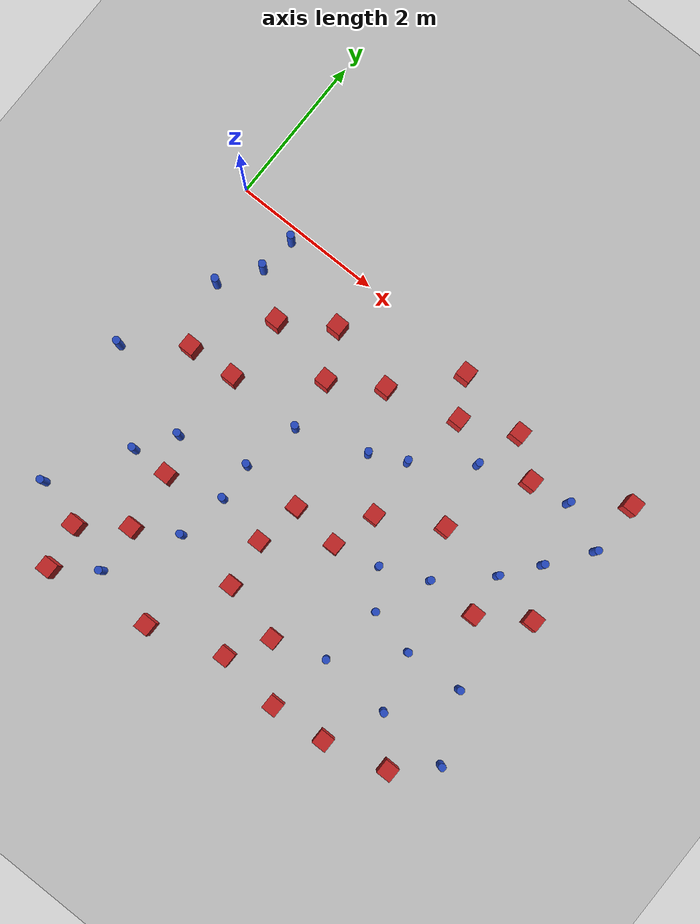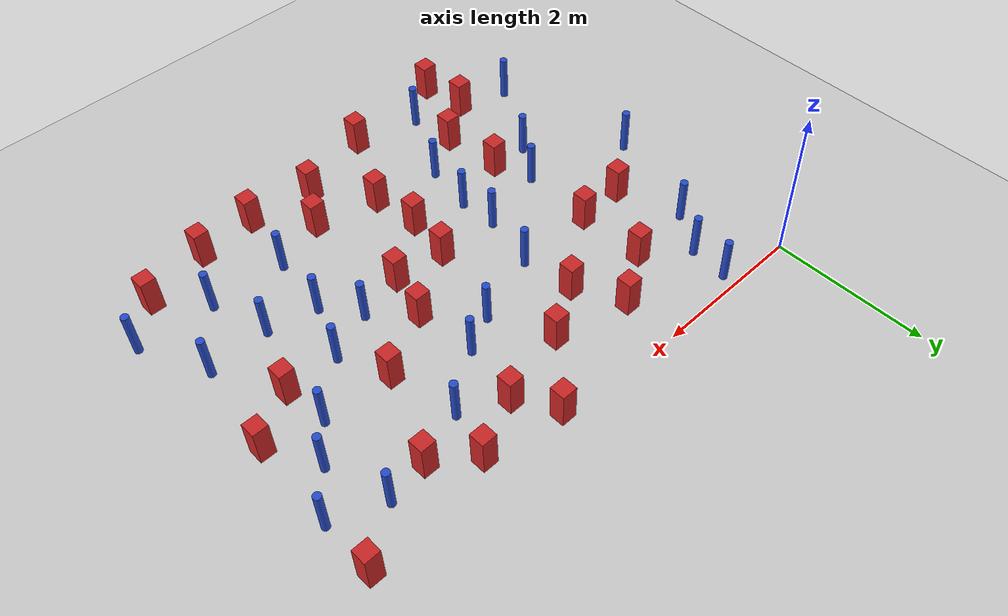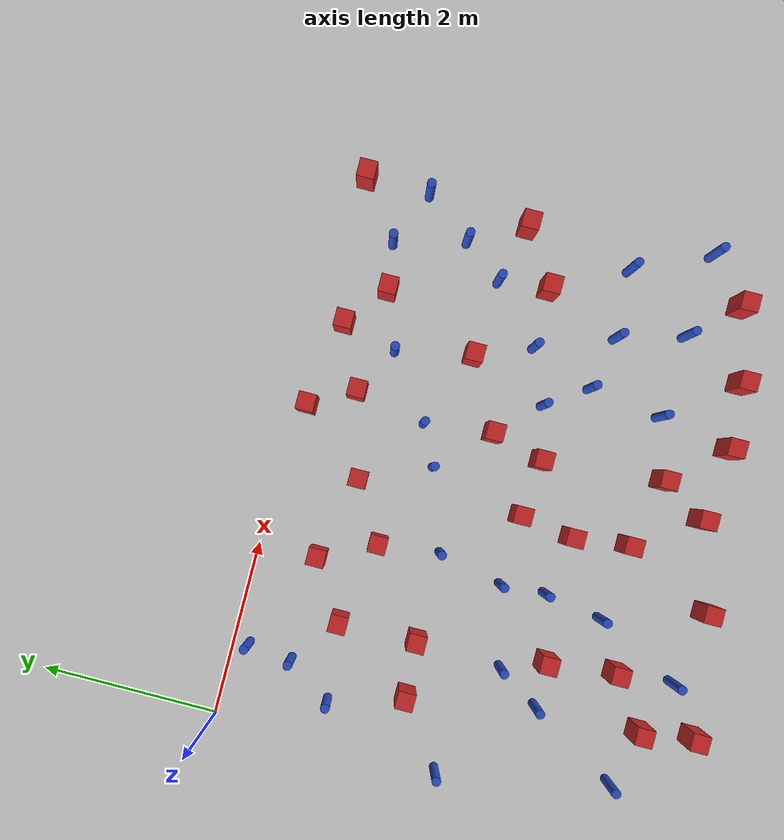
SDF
<sdf version="1.6">
 <world name="default">
  <model name="ground_plane">
   <static>1</static>
   <link name="link">
    <collision name="collision">
     <geometry><plane><normal>0 0 1</normal><size>100 100</size></plane></geometry>
     <surface><friction><ode><mu>100</mu><mu2>50</mu2></ode></friction></surface>
    </collision>
    <visual name="visual">
     <cast_shadows>0</cast_shadows>
     <geometry><plane><normal>0 0 1</normal><size>100 100</size></plane></geometry>
     <material>
      <ambient>1.0 1.0 1.0 1.0</ambient>
      <diffuse>0.8 0.8 0.8 1.0</diffuse>
      <specular>0.01 0.01 0.01 1.000000</specular>
     </material>
    </visual>
   </link>
  </model>
  <model name="square_post_obstacle3">
   <static>true</static>
   <pose>5.93491693929 -4.56497849383 -6.11067671241e-07 -5.50515727128e-06 -8.79689657224e-07 2.37013304536e-05</pose>
   <link name="link">
    <pose>0 0 0.25 0 -0 0</pose>
    <inertial>
     <mass>100</mass>
     <inertia>
      <ixx>0.166667</ixx>
      <ixy>0</ixy>
      <ixz>0</ixz>
      <iyy>0.166667</iyy>
      <iyz>0</iyz>
      <izz>0.166667</izz>
     </inertia>
    </inertial>
    <collision name="collision"><geometry><box><size>.2 .2 .5</size></box></geometry></collision>
    <visual name="visual">
     <geometry><box><size>.2 .2 .5</size></box></geometry>
     <material>
      <script><name>Gazebo/Red</name><uri>file://media/materials/scripts/gazebo.material</uri></script>
     </material>
    </visual>
   </link>
  </model>
  <model name="square_post_obstacle5">
   <static>true</static>
   <pose>1.39741543957 -1.98216224227 -6.11067671241e-07 -5.50515727128e-06 -8.79689657224e-07 2.37013304536e-05</pose>
   <link name="link">
    <pose>0 0 0.25 0 -0 0</pose>
    <inertial>
     <mass>100</mass>
     <inertia>
      <ixx>0.166667</ixx>
      <ixy>0</ixy>
      <ixz>0</ixz>
      <iyy>0.166667</iyy>
      <iyz>0</iyz>
      <izz>0.166667</izz>
     </inertia>
    </inertial>
    <collision name="collision"><geometry><box><size>.2 .2 .5</size></box></geometry></collision>
    <visual name="visual">
     <geometry><box><size>.2 .2 .5</size></box></geometry>
     <material>
      <script><name>Gazebo/Red</name><uri>file://media/materials/scripts/gazebo.material</uri></script>
     </material>
    </visual>
   </link>
  </model>
  <model name="pole_obstacle5">
   <static>true</static>
   <pose>2.40981222985 -1.99631648848 -9.47619616065e-06 5.49618799737e-07 2.36310414067e-07 -1.55090534796e-07</pose>
   <link name="link">
    <pose>0 0 0.3 0 -0 0</pose>
    <inertial>
     <mass>1</mass>
     <inertia><ixx>0.145833</ixx><ixy>0</ixy><ixz>0</ixz><iyy>0.145833</iyy><iyz>0</iyz><izz>0.125</izz></inertia>
    </inertial>
    <collision name="collision">
     <geometry><cylinder><radius>0.05</radius><length>.6</length></cylinder></geometry>
    </collision>
    <visual name="visual">
     <geometry><cylinder><radius>0.05</radius><length>.6</length></cylinder></geometry>
     <material>
      <script><name>Gazebo/Blue</name><uri>file://media/materials/scripts/gazebo.material</uri></script>
     </material>
    </visual>
   </link>
  </model>
  <model name="square_post_obstacle8">
   <static>true</static>
   <pose>3.69870335096 -2.82734177414 -6.11067671241e-07 -5.50515727128e-06 -8.79689657224e-07 2.37013304536e-05</pose>
   <link name="link">
    <pose>0 0 0.25 0 -0 0</pose>
    <inertial>
     <mass>100</mass>
     <inertia>
      <ixx>0.166667</ixx>
      <ixy>0</ixy>
      <ixz>0</ixz>
      <iyy>0.166667</iyy>
      <iyz>0</iyz>
      <izz>0.166667</izz>
     </inertia>
    </inertial>
    <collision name="collision"><geometry><box><size>.2 .2 .5</size></box></geometry></collision>
    <visual name="visual">
     <geometry><box><size>.2 .2 .5</size></box></geometry>
     <material>
      <script><name>Gazebo/Red</name><uri>file://media/materials/scripts/gazebo.material</uri></script>
     </material>
    </visual>
   </link>
  </model>
  <model name="pole_obstacle6">
   <static>true</static>
   <pose>0.389493919441 -4.4717487802 -9.47619616065e-06 5.49618799737e-07 2.36310414065e-07 -1.55090534796e-07</pose>
   <link name="link">
    <pose>0 0 0.3 0 -0 0</pose>
    <inertial>
     <mass>1</mass>
     <inertia><ixx>0.145833</ixx><ixy>0</ixy><ixz>0</ixz><iyy>0.145833</iyy><iyz>0</iyz><izz>0.125</izz></inertia>
    </inertial>
    <collision name="collision">
     <geometry><cylinder><radius>0.05</radius><length>.6</length></cylinder></geometry>
    </collision>
    <visual name="visual">
     <geometry><cylinder><radius>0.05</radius><length>.6</length></cylinder></geometry>
     <material>
      <script><name>Gazebo/Blue</name><uri>file://media/materials/scripts/gazebo.material</uri></script>
     </material>
    </visual>
   </link>
  </model>
  <model name="square_post_obstacle13">
   <static>true</static>
   <pose>1.38367656755 -1.09471865919 -6.11067671241e-07 -5.50515727128e-06 -8.79689657224e-07 2.37013304536e-05</pose>
   <link name="link">
    <pose>0 0 0.25 0 -0 0</pose>
    <inertial>
     <mass>100</mass>
     <inertia>
      <ixx>0.166667</ixx>
      <ixy>0</ixy>
      <ixz>0</ixz>
      <iyy>0.166667</iyy>
      <iyz>0</iyz>
      <izz>0.166667</izz>
     </inertia>
    </inertial>
    <collision name="collision"><geometry><box><size>.2 .2 .5</size></box></geometry></collision>
    <visual name="visual">
     <geometry><box><size>.2 .2 .5</size></box></geometry>
     <material>
      <script><name>Gazebo/Red</name><uri>file://media/materials/scripts/gazebo.material</uri></script>
     </material>
    </visual>
   </link>
  </model>
  <model name="pole_obstacle14">
   <static>true</static>
   <pose>4.50683126189 -3.98978135572 -9.47619616065e-06 5.49618799737e-07 2.36310414056e-07 -1.55090534802e-07</pose>
   <link name="link">
    <pose>0 0 0.3 0 -0 0</pose>
    <inertial>
     <mass>1</mass>
     <inertia><ixx>0.145833</ixx><ixy>0</ixy><ixz>0</ixz><iyy>0.145833</iyy><iyz>0</iyz><izz>0.125</izz></inertia>
    </inertial>
    <collision name="collision">
     <geometry><cylinder><radius>0.05</radius><length>.6</length></cylinder></geometry>
    </collision>
    <visual name="visual">
     <geometry><cylinder><radius>0.05</radius><length>.6</length></cylinder></geometry>
     <material>
      <script><name>Gazebo/Blue</name><uri>file://media/materials/scripts/gazebo.material</uri></script>
     </material>
    </visual>
   </link>
  </model>
  <model name="pole_obstacle17">
   <static>true</static>
   <pose>1.65598059644 -4.87979008221 -9.47619616065e-06 5.49618799737e-07 2.36310414061e-07 -1.550905348e-07</pose>
   <link name="link">
    <pose>0 0 0.3 0 -0 0</pose>
    <inertial>
     <mass>1</mass>
     <inertia><ixx>0.145833</ixx><ixy>0</ixy><ixz>0</ixz><iyy>0.145833</iyy><iyz>0</iyz><izz>0.125</izz></inertia>
    </inertial>
    <collision name="collision">
     <geometry><cylinder><radius>0.05</radius><length>.6</length></cylinder></geometry>
    </collision>
    <visual name="visual">
     <geometry><cylinder><radius>0.05</radius><length>.6</length></cylinder></geometry>
     <material>
      <script><name>Gazebo/Blue</name><uri>file://media/materials/scripts/gazebo.material</uri></script>
     </material>
    </visual>
   </link>
  </model>
  <model name="pole_obstacle18">
   <static>true</static>
   <pose>0.83141862547 -0.680883970394 -9.47619616065e-06 5.49618799737e-07 2.36310414058e-07 -1.55090534802e-07</pose>
   <link name="link">
    <pose>0 0 0.3 0 -0 0</pose>
    <inertial>
     <mass>1</mass>
     <inertia><ixx>0.145833</ixx><ixy>0</ixy><ixz>0</ixz><iyy>0.145833</iyy><iyz>0</iyz><izz>0.125</izz></inertia>
    </inertial>
    <collision name="collision">
     <geometry><cylinder><radius>0.05</radius><length>.6</length></cylinder></geometry>
    </collision>
    <visual name="visual">
     <geometry><cylinder><radius>0.05</radius><length>.6</length></cylinder></geometry>
     <material>
      <script><name>Gazebo/Blue</name><uri>file://media/materials/scripts/gazebo.material</uri></script>
     </material>
    </visual>
   </link>
  </model>
  <model name="square_post_obstacle30">
   <static>true</static>
   <pose>2.03150371565 -0.678253084458 -6.11067671241e-07 -5.50515727128e-06 -8.79689657224e-07 2.37013304536e-05</pose>
   <link name="link">
    <pose>0 0 0.25 0 -0 0</pose>
    <inertial>
     <mass>100</mass>
     <inertia>
      <ixx>0.166667</ixx>
      <ixy>0</ixy>
      <ixz>0</ixz>
      <iyy>0.166667</iyy>
      <iyz>0</iyz>
      <izz>0.166667</izz>
     </inertia>
    </inertial>
    <collision name="collision"><geometry><box><size>.2 .2 .5</size></box></geometry></collision>
    <visual name="visual">
     <geometry><box><size>.2 .2 .5</size></box></geometry>
     <material>
      <script><name>Gazebo/Red</name><uri>file://media/materials/scripts/gazebo.material</uri></script>
     </material>
    </visual>
   </link>
  </model>
  <model name="pole_obstacle22">
   <static>true</static>
   <pose>4.29974437576 -2.69305750148 -9.47619616065e-06 5.49618799738e-07 2.36310414051e-07 -1.55090534805e-07</pose>
   <link name="link">
    <pose>0 0 0.3 0 -0 0</pose>
    <inertial>
     <mass>1</mass>
     <inertia><ixx>0.145833</ixx><ixy>0</ixy><ixz>0</ixz><iyy>0.145833</iyy><iyz>0</iyz><izz>0.125</izz></inertia>
    </inertial>
    <collision name="collision">
     <geometry><cylinder><radius>0.05</radius><length>.6</length></cylinder></geometry>
    </collision>
    <visual name="visual">
     <geometry><cylinder><radius>0.05</radius><length>.6</length></cylinder></geometry>
     <material>
      <script><name>Gazebo/Blue</name><uri>file://media/materials/scripts/gazebo.material</uri></script>
     </material>
    </visual>
   </link>
  </model>
  <model name="pole_obstacle23">
   <static>true</static>
   <pose>0.0288925146814 -2.554800036 -9.47619616065e-06 5.49618799737e-07 2.36310414066e-07 -1.55090534795e-07</pose>
   <link name="link">
    <pose>0 0 0.3 0 -0 0</pose>
    <inertial>
     <mass>1</mass>
     <inertia><ixx>0.145833</ixx><ixy>0</ixy><ixz>0</ixz><iyy>0.145833</iyy><iyz>0</iyz><izz>0.125</izz></inertia>
    </inertial>
    <collision name="collision">
     <geometry><cylinder><radius>0.05</radius><length>.6</length></cylinder></geometry>
    </collision>
    <visual name="visual">
     <geometry><cylinder><radius>0.05</radius><length>.6</length></cylinder></geometry>
     <material>
      <script><name>Gazebo/Blue</name><uri>file://media/materials/scripts/gazebo.material</uri></script>
     </material>
    </visual>
   </link>
  </model>
  <model name="square_post_obstacle32">
   <static>true</static>
   <pose>4.63841736572 -0.311042959132 -6.11067671241e-07 -5.50515727128e-06 -8.79689657224e-07 2.37013304536e-05</pose>
   <link name="link">
    <pose>0 0 0.25 0 -0 0</pose>
    <inertial>
     <mass>100</mass>
     <inertia>
      <ixx>0.166667</ixx>
      <ixy>0</ixy>
      <ixz>0</ixz>
      <iyy>0.166667</iyy>
      <iyz>0</iyz>
      <izz>0.166667</izz>
     </inertia>
    </inertial>
    <collision name="collision"><geometry><box><size>.2 .2 .5</size></box></geometry></collision>
    <visual name="visual">
     <geometry><box><size>.2 .2 .5</size></box></geometry>
     <material>
      <script><name>Gazebo/Red</name><uri>file://media/materials/scripts/gazebo.material</uri></script>
     </material>
    </visual>
   </link>
  </model>
  <model name="pole_obstacle37">
   <static>true</static>
   <pose>6.01693368103 -3.25612209265 -9.47619616065e-06 5.49618799738e-07 2.36310414051e-07 -1.55090534805e-07</pose>
   <link name="link">
    <pose>0 0 0.3 0 -0 0</pose>
    <inertial>
     <mass>1</mass>
     <inertia><ixx>0.145833</ixx><ixy>0</ixy><ixz>0</ixz><iyy>0.145833</iyy><iyz>0</iyz><izz>0.125</izz></inertia>
    </inertial>
    <collision name="collision">
     <geometry><cylinder><radius>0.05</radius><length>.6</length></cylinder></geometry>
    </collision>
    <visual name="visual">
     <geometry><cylinder><radius>0.05</radius><length>.6</length></cylinder></geometry>
     <material>
      <script><name>Gazebo/Blue</name><uri>file://media/materials/scripts/gazebo.material</uri></script>
     </material>
    </visual>
   </link>
  </model>
  <model name="pole_obstacle43">
   <static>true</static>
   <pose>2.26759125185 -3.2463723414 -9.47619616065e-06 5.49618799737e-07 2.36310414051e-07 -1.55090534807e-07</pose>
   <link name="link">
    <pose>0 0 0.3 0 -0 0</pose>
    <inertial>
     <mass>1</mass>
     <inertia><ixx>0.145833</ixx><ixy>0</ixy><ixz>0</ixz><iyy>0.145833</iyy><iyz>0</iyz><izz>0.125</izz></inertia>
    </inertial>
    <collision name="collision">
     <geometry><cylinder><radius>0.05</radius><length>.6</length></cylinder></geometry>
    </collision>
    <visual name="visual">
     <geometry><cylinder><radius>0.05</radius><length>.6</length></cylinder></geometry>
     <material>
      <script><name>Gazebo/Blue</name><uri>file://media/materials/scripts/gazebo.material</uri></script>
     </material>
    </visual>
   </link>
  </model>
  <model name="square_post_obstacle40">
   <static>true</static>
   <pose>3.50865092904 -4.73596114706 -6.11067671241e-07 -5.50515727128e-06 -8.79689657224e-07 2.37013304536e-05</pose>
   <link name="link">
    <pose>0 0 0.25 0 -0 0</pose>
    <inertial>
     <mass>100</mass>
     <inertia>
      <ixx>0.166667</ixx>
      <ixy>0</ixy>
      <ixz>0</ixz>
      <iyy>0.166667</iyy>
      <iyz>0</iyz>
      <izz>0.166667</izz>
     </inertia>
    </inertial>
    <collision name="collision"><geometry><box><size>.2 .2 .5</size></box></geometry></collision>
    <visual name="visual">
     <geometry><box><size>.2 .2 .5</size></box></geometry>
     <material>
      <script><name>Gazebo/Red</name><uri>file://media/materials/scripts/gazebo.material</uri></script>
     </material>
    </visual>
   </link>
  </model>
  <model name="pole_obstacle49">
   <static>true</static>
   <pose>5.64526647677 -0.608602017892 -9.47619616065e-06 5.49618799737e-07 2.36310414061e-07 -1.550905348e-07</pose>
   <link name="link">
    <pose>0 0 0.3 0 -0 0</pose>
    <inertial>
     <mass>1</mass>
     <inertia><ixx>0.145833</ixx><ixy>0</ixy><ixz>0</ixz><iyy>0.145833</iyy><iyz>0</iyz><izz>0.125</izz></inertia>
    </inertial>
    <collision name="collision">
     <geometry><cylinder><radius>0.05</radius><length>.6</length></cylinder></geometry>
    </collision>
    <visual name="visual">
     <geometry><cylinder><radius>0.05</radius><length>.6</length></cylinder></geometry>
     <material>
      <script><name>Gazebo/Blue</name><uri>file://media/materials/scripts/gazebo.material</uri></script>
     </material>
    </visual>
   </link>
  </model>
  <model name="square_post_obstacle50">
   <static>true</static>
   <pose>1.03570047917 -4.65241088462 -6.11067671241e-07 -5.50515727128e-06 -8.79689657224e-07 2.37013304536e-05</pose>
   <link name="link">
    <pose>0 0 0.25 0 -0 0</pose>
    <inertial>
     <mass>100</mass>
     <inertia>
      <ixx>0.166667</ixx>
      <ixy>0</ixy>
      <ixz>0</ixz>
      <iyy>0.166667</iyy>
      <iyz>0</iyz>
      <izz>0.166667</izz>
     </inertia>
    </inertial>
    <collision name="collision"><geometry><box><size>.2 .2 .5</size></box></geometry></collision>
    <visual name="visual">
     <geometry><box><size>.2 .2 .5</size></box></geometry>
     <material>
      <script><name>Gazebo/Red</name><uri>file://media/materials/scripts/gazebo.material</uri></script>
     </material>
    </visual>
   </link>
  </model>
  <model name="square_post_obstacle55">
   <static>true</static>
   <pose>2.95252457975 -3.37588855987 -6.11067671241e-07 -5.50515727128e-06 -8.79689657224e-07 2.37013304536e-05</pose>
   <link name="link">
    <pose>0 0 0.25 0 -0 0</pose>
    <inertial>
     <mass>100</mass>
     <inertia>
      <ixx>0.166667</ixx>
      <ixy>0</ixy>
      <ixz>0</ixz>
      <iyy>0.166667</iyy>
      <iyz>0</iyz>
      <izz>0.166667</izz>
     </inertia>
    </inertial>
    <collision name="collision"><geometry><box><size>.2 .2 .5</size></box></geometry></collision>
    <visual name="visual">
     <geometry><box><size>.2 .2 .5</size></box></geometry>
     <material>
      <script><name>Gazebo/Red</name><uri>file://media/materials/scripts/gazebo.material</uri></script>
     </material>
    </visual>
   </link>
  </model>
  <model name="square_post_obstacle58">
   <static>true</static>
   <pose>6.28109671533 -0.143206653476 -6.11067671241e-07 -5.50515727128e-06 -8.79689657224e-07 2.37013304536e-05</pose>
   <link name="link">
    <pose>0 0 0.25 0 -0 0</pose>
    <inertial>
     <mass>100</mass>
     <inertia>
      <ixx>0.166667</ixx>
      <ixy>0</ixy>
      <ixz>0</ixz>
      <iyy>0.166667</iyy>
      <iyz>0</iyz>
      <izz>0.166667</izz>
     </inertia>
    </inertial>
    <collision name="collision"><geometry><box><size>.2 .2 .5</size></box></geometry></collision>
    <visual name="visual">
     <geometry><box><size>.2 .2 .5</size></box></geometry>
     <material>
      <script><name>Gazebo/Red</name><uri>file://media/materials/scripts/gazebo.material</uri></script>
     </material>
    </visual>
   </link>
  </model>
  <model name="square_post_obstacle61">
   <static>true</static>
   <pose>1.52835404026 -3.45151735247 -6.11067671241e-07 -5.50515727128e-06 -8.79689657224e-07 2.37013304536e-05</pose>
   <link name="link">
    <pose>0 0 0.25 0 -0 0</pose>
    <inertial>
     <mass>100</mass>
     <inertia>
      <ixx>0.166667</ixx>
      <ixy>0</ixy>
      <ixz>0</ixz>
      <iyy>0.166667</iyy>
      <iyz>0</iyz>
      <izz>0.166667</izz>
     </inertia>
    </inertial>
    <collision name="collision"><geometry><box><size>.2 .2 .5</size></box></geometry></collision>
    <visual name="visual">
     <geometry><box><size>.2 .2 .5</size></box></geometry>
     <material>
      <script><name>Gazebo/Red</name><uri>file://media/materials/scripts/gazebo.material</uri></script>
     </material>
    </visual>
   </link>
  </model>
  <model name="square_post_obstacle68">
   <static>true</static>
   <pose>2.33672119821 -1.29504776456 -6.11067671241e-07 -5.50515727128e-06 -8.79689657224e-07 2.37013304536e-05</pose>
   <link name="link">
    <pose>0 0 0.25 0 -0 0</pose>
    <inertial>
     <mass>100</mass>
     <inertia>
      <ixx>0.166667</ixx>
      <ixy>0</ixy>
      <ixz>0</ixz>
      <iyy>0.166667</iyy>
      <iyz>0</iyz>
      <izz>0.166667</izz>
     </inertia>
    </inertial>
    <collision name="collision"><geometry><box><size>.2 .2 .5</size></box></geometry></collision>
    <visual name="visual">
     <geometry><box><size>.2 .2 .5</size></box></geometry>
     <material>
      <script><name>Gazebo/Red</name><uri>file://media/materials/scripts/gazebo.material</uri></script>
     </material>
    </visual>
   </link>
  </model>
  <model name="square_post_obstacle74">
   <static>true</static>
   <pose>3.86127628082 -2.23218335278 -6.11067671241e-07 -5.50515727128e-06 -8.79689657224e-07 2.37013304536e-05</pose>
   <link name="link">
    <pose>0 0 0.25 0 -0 0</pose>
    <inertial>
     <mass>100</mass>
     <inertia>
      <ixx>0.166667</ixx>
      <ixy>0</ixy>
      <ixz>0</ixz>
      <iyy>0.166667</iyy>
      <iyz>0</iyz>
      <izz>0.166667</izz>
     </inertia>
    </inertial>
    <collision name="collision"><geometry><box><size>.2 .2 .5</size></box></geometry></collision>
    <visual name="visual">
     <geometry><box><size>.2 .2 .5</size></box></geometry>
     <material>
      <script><name>Gazebo/Red</name><uri>file://media/materials/scripts/gazebo.material</uri></script>
     </material>
    </visual>
   </link>
  </model>
  <model name="square_post_obstacle75">
   <static>true</static>
   <pose>3.02507740578 -4.01663910359 -6.11067671241e-07 -5.50515727128e-06 -8.79689657224e-07 2.37013304536e-05</pose>
   <link name="link">
    <pose>0 0 0.25 0 -0 0</pose>
    <inertial>
     <mass>100</mass>
     <inertia>
      <ixx>0.166667</ixx>
      <ixy>0</ixy>
      <ixz>0</ixz>
      <iyy>0.166667</iyy>
      <iyz>0</iyz>
      <izz>0.166667</izz>
     </inertia>
    </inertial>
    <collision name="collision"><geometry><box><size>.2 .2 .5</size></box></geometry></collision>
    <visual name="visual">
     <geometry><box><size>.2 .2 .5</size></box></geometry>
     <material>
      <script><name>Gazebo/Red</name><uri>file://media/materials/scripts/gazebo.material</uri></script>
     </material>
    </visual>
   </link>
  </model>
  <model name="pole_obstacle95">
   <static>true</static>
   <pose>1.33597169667 -2.97445685794 -9.47619616065e-06 5.49618799737e-07 2.36310414062e-07 -1.55090534798e-07</pose>
   <link name="link">
    <pose>0 0 0.3 0 -0 0</pose>
    <inertial>
     <mass>1</mass>
     <inertia><ixx>0.145833</ixx><ixy>0</ixy><ixz>0</ixz><iyy>0.145833</iyy><iyz>0</iyz><izz>0.125</izz></inertia>
    </inertial>
    <collision name="collision">
     <geometry><cylinder><radius>0.05</radius><length>.6</length></cylinder></geometry>
    </collision>
    <visual name="visual">
     <geometry><cylinder><radius>0.05</radius><length>.6</length></cylinder></geometry>
     <material>
      <script><name>Gazebo/Blue</name><uri>file://media/materials/scripts/gazebo.material</uri></script>
     </material>
    </visual>
   </link>
  </model>
  <model name="pole_obstacle109">
   <static>true</static>
   <pose>0.880218900646 -0.179494604576 -9.47619616065e-06 5.49618799737e-07 2.36310414066e-07 -1.55090534796e-07</pose>
   <link name="link">
    <pose>0 0 0.3 0 -0 0</pose>
    <inertial>
     <mass>1</mass>
     <inertia><ixx>0.145833</ixx><ixy>0</ixy><ixz>0</ixz><iyy>0.145833</iyy><iyz>0</iyz><izz>0.125</izz></inertia>
    </inertial>
    <collision name="collision">
     <geometry><cylinder><radius>0.05</radius><length>.6</length></cylinder></geometry>
    </collision>
    <visual name="visual">
     <geometry><cylinder><radius>0.05</radius><length>.6</length></cylinder></geometry>
     <material>
      <script><name>Gazebo/Blue</name><uri>file://media/materials/scripts/gazebo.material</uri></script>
     </material>
    </visual>
   </link>
  </model>
  <model name="pole_obstacle115">
   <static>true</static>
   <pose>1.01440386735 -3.45922749692 -9.47619616065e-06 5.49618799737e-07 2.36310414062e-07 -1.55090534798e-07</pose>
   <link name="link">
    <pose>0 0 0.3 0 -0 0</pose>
    <inertial>
     <mass>1</mass>
     <inertia><ixx>0.145833</ixx><ixy>0</ixy><ixz>0</ixz><iyy>0.145833</iyy><iyz>0</iyz><izz>0.125</izz></inertia>
    </inertial>
    <collision name="collision">
     <geometry><cylinder><radius>0.05</radius><length>.6</length></cylinder></geometry>
    </collision>
    <visual name="visual">
     <geometry><cylinder><radius>0.05</radius><length>.6</length></cylinder></geometry>
     <material>
      <script><name>Gazebo/Blue</name><uri>file://media/materials/scripts/gazebo.material</uri></script>
     </material>
    </visual>
   </link>
  </model>
  <model name="square_post_obstacle111">
   <static>true</static>
   <pose>5.09523261792 -4.77558941481 -6.11067671241e-07 -5.50515727128e-06 -8.79689657224e-07 2.37013304536e-05</pose>
   <link name="link">
    <pose>0 0 0.25 0 -0 0</pose>
    <inertial>
     <mass>100</mass>
     <inertia>
      <ixx>0.166667</ixx>
      <ixy>0</ixy>
      <ixz>0</ixz>
      <iyy>0.166667</iyy>
      <iyz>0</iyz>
      <izz>0.166667</izz>
     </inertia>
    </inertial>
    <collision name="collision"><geometry><box><size>.2 .2 .5</size></box></geometry></collision>
    <visual name="visual">
     <geometry><box><size>.2 .2 .5</size></box></geometry>
     <material>
      <script><name>Gazebo/Red</name><uri>file://media/materials/scripts/gazebo.material</uri></script>
     </material>
    </visual>
   </link>
  </model>
  <model name="pole_obstacle121">
   <static>true</static>
   <pose>3.32131577457 -1.6781335726 -9.47619616065e-06 5.49618799737e-07 2.36310414072e-07 -1.55090534793e-07</pose>
   <link name="link">
    <pose>0 0 0.3 0 -0 0</pose>
    <inertial>
     <mass>1</mass>
     <inertia><ixx>0.145833</ixx><ixy>0</ixy><ixz>0</ixz><iyy>0.145833</iyy><iyz>0</iyz><izz>0.125</izz></inertia>
    </inertial>
    <collision name="collision">
     <geometry><cylinder><radius>0.05</radius><length>.6</length></cylinder></geometry>
    </collision>
    <visual name="visual">
     <geometry><cylinder><radius>0.05</radius><length>.6</length></cylinder></geometry>
     <material>
      <script><name>Gazebo/Blue</name><uri>file://media/materials/scripts/gazebo.material</uri></script>
     </material>
    </visual>
   </link>
  </model>
  <model name="pole_obstacle123">
   <static>true</static>
   <pose>6.27652964443 -0.870424732003 -9.47619616065e-06 5.49618799737e-07 2.36310414061e-07 -1.550905348e-07</pose>
   <link name="link">
    <pose>0 0 0.3 0 -0 0</pose>
    <inertial>
     <mass>1</mass>
     <inertia><ixx>0.145833</ixx><ixy>0</ixy><ixz>0</ixz><iyy>0.145833</iyy><iyz>0</iyz><izz>0.125</izz></inertia>
    </inertial>
    <collision name="collision">
     <geometry><cylinder><radius>0.05</radius><length>.6</length></cylinder></geometry>
    </collision>
    <visual name="visual">
     <geometry><cylinder><radius>0.05</radius><length>.6</length></cylinder></geometry>
     <material>
      <script><name>Gazebo/Blue</name><uri>file://media/materials/scripts/gazebo.material</uri></script>
     </material>
    </visual>
   </link>
  </model>
  <model name="pole_obstacle124">
   <static>true</static>
   <pose>5.87001196188 -1.41035433271 -9.47619616065e-06 5.49618799738e-07 2.36310414071e-07 -1.55090534796e-07</pose>
   <link name="link">
    <pose>0 0 0.3 0 -0 0</pose>
    <inertial>
     <mass>1</mass>
     <inertia><ixx>0.145833</ixx><ixy>0</ixy><ixz>0</ixz><iyy>0.145833</iyy><iyz>0</iyz><izz>0.125</izz></inertia>
    </inertial>
    <collision name="collision">
     <geometry><cylinder><radius>0.05</radius><length>.6</length></cylinder></geometry>
    </collision>
    <visual name="visual">
     <geometry><cylinder><radius>0.05</radius><length>.6</length></cylinder></geometry>
     <material>
      <script><name>Gazebo/Blue</name><uri>file://media/materials/scripts/gazebo.material</uri></script>
     </material>
    </visual>
   </link>
  </model>
  <model name="pole_obstacle131">
   <static>true</static>
   <pose>0.485863876652 -1.18968577591 -9.47619616065e-06 5.49618799737e-07 2.36310414059e-07 -1.55090534802e-07</pose>
   <link name="link">
    <pose>0 0 0.3 0 -0 0</pose>
    <inertial>
     <mass>1</mass>
     <inertia><ixx>0.145833</ixx><ixy>0</ixy><ixz>0</ixz><iyy>0.145833</iyy><iyz>0</iyz><izz>0.125</izz></inertia>
    </inertial>
    <collision name="collision">
     <geometry><cylinder><radius>0.05</radius><length>.6</length></cylinder></geometry>
    </collision>
    <visual name="visual">
     <geometry><cylinder><radius>0.05</radius><length>.6</length></cylinder></geometry>
     <material>
      <script><name>Gazebo/Blue</name><uri>file://media/materials/scripts/gazebo.material</uri></script>
     </material>
    </visual>
   </link>
  </model>
  <model name="square_post_obstacle118">
   <static>true</static>
   <pose>4.64479843448 -1.79814276675 -6.11067671241e-07 -5.50515727128e-06 -8.79689657224e-07 2.37013304536e-05</pose>
   <link name="link">
    <pose>0 0 0.25 0 -0 0</pose>
    <inertial>
     <mass>100</mass>
     <inertia>
      <ixx>0.166667</ixx>
      <ixy>0</ixy>
      <ixz>0</ixz>
      <iyy>0.166667</iyy>
      <iyz>0</iyz>
      <izz>0.166667</izz>
     </inertia>
    </inertial>
    <collision name="collision"><geometry><box><size>.2 .2 .5</size></box></geometry></collision>
    <visual name="visual">
     <geometry><box><size>.2 .2 .5</size></box></geometry>
     <material>
      <script><name>Gazebo/Red</name><uri>file://media/materials/scripts/gazebo.material</uri></script>
     </material>
    </visual>
   </link>
  </model>
  <model name="square_post_obstacle123">
   <static>true</static>
   <pose>5.58381547905 -2.42893918374 -6.11067671241e-07 -5.50515727128e-06 -8.79689657224e-07 2.37013304536e-05</pose>
   <link name="link">
    <pose>0 0 0.25 0 -0 0</pose>
    <inertial>
     <mass>100</mass>
     <inertia>
      <ixx>0.166667</ixx>
      <ixy>0</ixy>
      <ixz>0</ixz>
      <iyy>0.166667</iyy>
      <iyz>0</iyz>
      <izz>0.166667</izz>
     </inertia>
    </inertial>
    <collision name="collision"><geometry><box><size>.2 .2 .5</size></box></geometry></collision>
    <visual name="visual">
     <geometry><box><size>.2 .2 .5</size></box></geometry>
     <material>
      <script><name>Gazebo/Red</name><uri>file://media/materials/scripts/gazebo.material</uri></script>
     </material>
    </visual>
   </link>
  </model>
  <model name="square_post_obstacle127">
   <static>true</static>
   <pose>3.93780053145 -0.643715294398 -6.11067671241e-07 -5.50515727128e-06 -8.79689657224e-07 2.37013304536e-05</pose>
   <link name="link">
    <pose>0 0 0.25 0 -0 0</pose>
    <inertial>
     <mass>100</mass>
     <inertia>
      <ixx>0.166667</ixx>
      <ixy>0</ixy>
      <ixz>0</ixz>
      <iyy>0.166667</iyy>
      <iyz>0</iyz>
      <izz>0.166667</izz>
     </inertia>
    </inertial>
    <collision name="collision"><geometry><box><size>.2 .2 .5</size></box></geometry></collision>
    <visual name="visual">
     <geometry><box><size>.2 .2 .5</size></box></geometry>
     <material>
      <script><name>Gazebo/Red</name><uri>file://media/materials/scripts/gazebo.material</uri></script>
     </material>
    </visual>
   </link>
  </model>
  <model name="square_post_obstacle137">
   <static>true</static>
   <pose>2.51319865448 -5.04619399887 -6.11067671241e-07 -5.50515727128e-06 -8.79689657224e-07 2.37013304536e-05</pose>
   <link name="link">
    <pose>0 0 0.25 0 -0 0</pose>
    <inertial>
     <mass>100</mass>
     <inertia>
      <ixx>0.166667</ixx>
      <ixy>0</ixy>
      <ixz>0</ixz>
      <iyy>0.166667</iyy>
      <iyz>0</iyz>
      <izz>0.166667</izz>
     </inertia>
    </inertial>
    <collision name="collision"><geometry><box><size>.2 .2 .5</size></box></geometry></collision>
    <visual name="visual">
     <geometry><box><size>.2 .2 .5</size></box></geometry>
     <material>
      <script><name>Gazebo/Red</name><uri>file://media/materials/scripts/gazebo.material</uri></script>
     </material>
    </visual>
   </link>
  </model>
  <model name="square_post_obstacle143">
   <static>true</static>
   <pose>2.98264623956 -0.903230557565 -6.11067671241e-07 -5.50515727128e-06 -8.79689657224e-07 2.37013304536e-05</pose>
   <link name="link">
    <pose>0 0 0.25 0 -0 0</pose>
    <inertial>
     <mass>100</mass>
     <inertia>
      <ixx>0.166667</ixx>
      <ixy>0</ixy>
      <ixz>0</ixz>
      <iyy>0.166667</iyy>
      <iyz>0</iyz>
      <izz>0.166667</izz>
     </inertia>
    </inertial>
    <collision name="collision"><geometry><box><size>.2 .2 .5</size></box></geometry></collision>
    <visual name="visual">
     <geometry><box><size>.2 .2 .5</size></box></geometry>
     <material>
      <script><name>Gazebo/Red</name><uri>file://media/materials/scripts/gazebo.material</uri></script>
     </material>
    </visual>
   </link>
  </model>
  <model name="square_post_obstacle149">
   <static>true</static>
   <pose>5.12017501942 -0.688888027112 -6.11067671241e-07 -5.50515727128e-06 -8.79689657224e-07 2.37013304536e-05</pose>
   <link name="link">
    <pose>0 0 0.25 0 -0 0</pose>
    <inertial>
     <mass>100</mass>
     <inertia>
      <ixx>0.166667</ixx>
      <ixy>0</ixy>
      <ixz>0</ixz>
      <iyy>0.166667</iyy>
      <iyz>0</iyz>
      <izz>0.166667</izz>
     </inertia>
    </inertial>
    <collision name="collision"><geometry><box><size>.2 .2 .5</size></box></geometry></collision>
    <visual name="visual">
     <geometry><box><size>.2 .2 .5</size></box></geometry>
     <material>
      <script><name>Gazebo/Red</name><uri>file://media/materials/scripts/gazebo.material</uri></script>
     </material>
    </visual>
   </link>
  </model>
  <model name="square_post_obstacle152">
   <static>true</static>
   <pose>4.35194241254 -4.83184355724 -6.11067671241e-07 -5.50515727128e-06 -8.79689657224e-07 2.37013304536e-05</pose>
   <link name="link">
    <pose>0 0 0.25 0 -0 0</pose>
    <inertial>
     <mass>100</mass>
     <inertia>
      <ixx>0.166667</ixx>
      <ixy>0</ixy>
      <ixz>0</ixz>
      <iyy>0.166667</iyy>
      <iyz>0</iyz>
      <izz>0.166667</izz>
     </inertia>
    </inertial>
    <collision name="collision"><geometry><box><size>.2 .2 .5</size></box></geometry></collision>
    <visual name="visual">
     <geometry><box><size>.2 .2 .5</size></box></geometry>
     <material>
      <script><name>Gazebo/Red</name><uri>file://media/materials/scripts/gazebo.material</uri></script>
     </material>
    </visual>
   </link>
  </model>
  <model name="pole_obstacle161">
   <static>true</static>
   <pose>4.90421057921 -2.4343012238 -9.47619616065e-06 5.49618799738e-07 2.36310414051e-07 -1.55090534805e-07</pose>
   <link name="link">
    <pose>0 0 0.3 0 -0 0</pose>
    <inertial>
     <mass>1</mass>
     <inertia><ixx>0.145833</ixx><ixy>0</ixy><ixz>0</ixz><iyy>0.145833</iyy><iyz>0</iyz><izz>0.125</izz></inertia>
    </inertial>
    <collision name="collision">
     <geometry><cylinder><radius>0.05</radius><length>.6</length></cylinder></geometry>
    </collision>
    <visual name="visual">
     <geometry><cylinder><radius>0.05</radius><length>.6</length></cylinder></geometry>
     <material>
      <script><name>Gazebo/Blue</name><uri>file://media/materials/scripts/gazebo.material</uri></script>
     </material>
    </visual>
   </link>
  </model>
  <model name="pole_obstacle163">
   <static>true</static>
   <pose>3.76962584621 -1.45416243762 -9.47619616065e-06 5.49618799737e-07 2.36310414072e-07 -1.55090534793e-07</pose>
   <link name="link">
    <pose>0 0 0.3 0 -0 0</pose>
    <inertial>
     <mass>1</mass>
     <inertia><ixx>0.145833</ixx><ixy>0</ixy><ixz>0</ixz><iyy>0.145833</iyy><iyz>0</iyz><izz>0.125</izz></inertia>
    </inertial>
    <collision name="collision">
     <geometry><cylinder><radius>0.05</radius><length>.6</length></cylinder></geometry>
    </collision>
    <visual name="visual">
     <geometry><cylinder><radius>0.05</radius><length>.6</length></cylinder></geometry>
     <material>
      <script><name>Gazebo/Blue</name><uri>file://media/materials/scripts/gazebo.material</uri></script>
     </material>
    </visual>
   </link>
  </model>
  <model name="pole_obstacle175">
   <static>true</static>
   <pose>2.14903567977 -3.9168476584 -9.47619616065e-06 5.49618799737e-07 2.36310414051e-07 -1.55090534807e-07</pose>
   <link name="link">
    <pose>0 0 0.3 0 -0 0</pose>
    <inertial>
     <mass>1</mass>
     <inertia><ixx>0.145833</ixx><ixy>0</ixy><ixz>0</ixz><iyy>0.145833</iyy><iyz>0</iyz><izz>0.125</izz></inertia>
    </inertial>
    <collision name="collision">
     <geometry><cylinder><radius>0.05</radius><length>.6</length></cylinder></geometry>
    </collision>
    <visual name="visual">
     <geometry><cylinder><radius>0.05</radius><length>.6</length></cylinder></geometry>
     <material>
      <script><name>Gazebo/Blue</name><uri>file://media/materials/scripts/gazebo.material</uri></script>
     </material>
    </visual>
   </link>
  </model>
  <model name="square_post_obstacle167">
   <static>true</static>
   <pose>6.20034055776 -2.02792711833 -6.11067671241e-07 -5.50515727128e-06 -8.79689657224e-07 2.37013304536e-05</pose>
   <link name="link">
    <pose>0 0 0.25 0 -0 0</pose>
    <inertial>
     <mass>100</mass>
     <inertia>
      <ixx>0.166667</ixx>
      <ixy>0</ixy>
      <ixz>0</ixz>
      <iyy>0.166667</iyy>
      <iyz>0</iyz>
      <izz>0.166667</izz>
     </inertia>
    </inertial>
    <collision name="collision"><geometry><box><size>.2 .2 .5</size></box></geometry></collision>
    <visual name="visual">
     <geometry><box><size>.2 .2 .5</size></box></geometry>
     <material>
      <script><name>Gazebo/Red</name><uri>file://media/materials/scripts/gazebo.material</uri></script>
     </material>
    </visual>
   </link>
  </model>
  <model name="square_post_obstacle172">
   <static>true</static>
   <pose>0.75871010044 -2.02203893983 -6.11067671241e-07 -5.50515727128e-06 -8.79689657224e-07 2.37013304536e-05</pose>
   <link name="link">
    <pose>0 0 0.25 0 -0 0</pose>
    <inertial>
     <mass>100</mass>
     <inertia>
      <ixx>0.166667</ixx>
      <ixy>0</ixy>
      <ixz>0</ixz>
      <iyy>0.166667</iyy>
      <iyz>0</iyz>
      <izz>0.166667</izz>
     </inertia>
    </inertial>
    <collision name="collision"><geometry><box><size>.2 .2 .5</size></box></geometry></collision>
    <visual name="visual">
     <geometry><box><size>.2 .2 .5</size></box></geometry>
     <material>
      <script><name>Gazebo/Red</name><uri>file://media/materials/scripts/gazebo.material</uri></script>
     </material>
    </visual>
   </link>
  </model>
  <model name="square_post_obstacle187">
   <static>true</static>
   <pose>3.04579360719 -2.75857478941 -6.11067671241e-07 -5.50515727128e-06 -8.79689657224e-07 2.37013304536e-05</pose>
   <link name="link">
    <pose>0 0 0.25 0 -0 0</pose>
    <inertial>
     <mass>100</mass>
     <inertia>
      <ixx>0.166667</ixx>
      <ixy>0</ixy>
      <ixz>0</ixz>
      <iyy>0.166667</iyy>
      <iyz>0</iyz>
      <izz>0.166667</izz>
     </inertia>
    </inertial>
    <collision name="collision"><geometry><box><size>.2 .2 .5</size></box></geometry></collision>
    <visual name="visual">
     <geometry><box><size>.2 .2 .5</size></box></geometry>
     <material>
      <script><name>Gazebo/Red</name><uri>file://media/materials/scripts/gazebo.material</uri></script>
     </material>
    </visual>
   </link>
  </model>
  <model name="square_post_obstacle198">
   <static>true</static>
   <pose>3.65274312867 -0.141314486023 -6.11067671241e-07 -5.50515727128e-06 -8.79689657224e-07 2.37013304536e-05</pose>
   <link name="link">
    <pose>0 0 0.25 0 -0 0</pose>
    <inertial>
     <mass>100</mass>
     <inertia>
      <ixx>0.166667</ixx>
      <ixy>0</ixy>
      <ixz>0</ixz>
      <iyy>0.166667</iyy>
      <iyz>0</iyz>
      <izz>0.166667</izz>
     </inertia>
    </inertial>
    <collision name="collision"><geometry><box><size>.2 .2 .5</size></box></geometry></collision>
    <visual name="visual">
     <geometry><box><size>.2 .2 .5</size></box></geometry>
     <material>
      <script><name>Gazebo/Red</name><uri>file://media/materials/scripts/gazebo.material</uri></script>
     </material>
    </visual>
   </link>
  </model>
  <model name="square_post_obstacle202">
   <static>true</static>
   <pose>3.82665011227 -4.2105320214 -6.11067671241e-07 -5.50515727128e-06 -8.79689657224e-07 2.37013304536e-05</pose>
   <link name="link">
    <pose>0 0 0.25 0 -0 0</pose>
    <inertial>
     <mass>100</mass>
     <inertia>
      <ixx>0.166667</ixx>
      <ixy>0</ixy>
      <ixz>0</ixz>
      <iyy>0.166667</iyy>
      <iyz>0</iyz>
      <izz>0.166667</izz>
     </inertia>
    </inertial>
    <collision name="collision"><geometry><box><size>.2 .2 .5</size></box></geometry></collision>
    <visual name="visual">
     <geometry><box><size>.2 .2 .5</size></box></geometry>
     <material>
      <script><name>Gazebo/Red</name><uri>file://media/materials/scripts/gazebo.material</uri></script>
     </material>
    </visual>
   </link>
  </model>
  <model name="pole_obstacle195">
   <static>true</static>
   <pose>2.23888423769 -2.73903909498 -9.47619616065e-06 5.49618799737e-07 2.36310414051e-07 -1.55090534807e-07</pose>
   <link name="link">
    <pose>0 0 0.3 0 -0 0</pose>
    <inertial>
     <mass>1</mass>
     <inertia><ixx>0.145833</ixx><ixy>0</ixy><ixz>0</ixz><iyy>0.145833</iyy><iyz>0</iyz><izz>0.125</izz></inertia>
    </inertial>
    <collision name="collision">
     <geometry><cylinder><radius>0.05</radius><length>.6</length></cylinder></geometry>
    </collision>
    <visual name="visual">
     <geometry><cylinder><radius>0.05</radius><length>.6</length></cylinder></geometry>
     <material>
      <script><name>Gazebo/Blue</name><uri>file://media/materials/scripts/gazebo.material</uri></script>
     </material>
    </visual>
   </link>
  </model>
  <model name="pole_obstacle197">
   <static>true</static>
   <pose>4.61791816967 -3.15605415918 -9.47619616065e-06 5.49618799738e-07 2.36310414051e-07 -1.55090534805e-07</pose>
   <link name="link">
    <pose>0 0 0.3 0 -0 0</pose>
    <inertial>
     <mass>1</mass>
     <inertia><ixx>0.145833</ixx><ixy>0</ixy><ixz>0</ixz><iyy>0.145833</iyy><iyz>0</iyz><izz>0.125</izz></inertia>
    </inertial>
    <collision name="collision">
     <geometry><cylinder><radius>0.05</radius><length>.6</length></cylinder></geometry>
    </collision>
    <visual name="visual">
     <geometry><cylinder><radius>0.05</radius><length>.6</length></cylinder></geometry>
     <material>
      <script><name>Gazebo/Blue</name><uri>file://media/materials/scripts/gazebo.material</uri></script>
     </material>
    </visual>
   </link>
  </model>
  <model name="square_post_obstacle207">
   <static>true</static>
   <pose>1.61111330794 -4.23682839545 -6.11067671241e-07 -5.50515727128e-06 -8.79689657224e-07 2.37013304536e-05</pose>
   <link name="link">
    <pose>0 0 0.25 0 -0 0</pose>
    <inertial>
     <mass>100</mass>
     <inertia>
      <ixx>0.166667</ixx>
      <ixy>0</ixy>
      <ixz>0</ixz>
      <iyy>0.166667</iyy>
      <iyz>0</iyz>
      <izz>0.166667</izz>
     </inertia>
    </inertial>
    <collision name="collision"><geometry><box><size>.2 .2 .5</size></box></geometry></collision>
    <visual name="visual">
     <geometry><box><size>.2 .2 .5</size></box></geometry>
     <material>
      <script><name>Gazebo/Red</name><uri>file://media/materials/scripts/gazebo.material</uri></script>
     </material>
    </visual>
   </link>
  </model>
  <model name="square_post_obstacle208">
   <static>true</static>
   <pose>1.12541436446 -5.2550800847 -6.11067671241e-07 -5.50515727128e-06 -8.79689657224e-07 2.37013304536e-05</pose>
   <link name="link">
    <pose>0 0 0.25 0 -0 0</pose>
    <inertial>
     <mass>100</mass>
     <inertia>
      <ixx>0.166667</ixx>
      <ixy>0</ixy>
      <ixz>0</ixz>
      <iyy>0.166667</iyy>
      <iyz>0</iyz>
      <izz>0.166667</izz>
     </inertia>
    </inertial>
    <collision name="collision"><geometry><box><size>.2 .2 .5</size></box></geometry></collision>
    <visual name="visual">
     <geometry><box><size>.2 .2 .5</size></box></geometry>
     <material>
      <script><name>Gazebo/Red</name><uri>file://media/materials/scripts/gazebo.material</uri></script>
     </material>
    </visual>
   </link>
  </model>
  <model name="pole_obstacle199">
   <static>true</static>
   <pose>5.23761243797 -3.29447256642 -9.47619616065e-06 5.49618799738e-07 2.36310414051e-07 -1.55090534805e-07</pose>
   <link name="link">
    <pose>0 0 0.3 0 -0 0</pose>
    <inertial>
     <mass>1</mass>
     <inertia><ixx>0.145833</ixx><ixy>0</ixy><ixz>0</ixz><iyy>0.145833</iyy><iyz>0</iyz><izz>0.125</izz></inertia>
    </inertial>
    <collision name="collision">
     <geometry><cylinder><radius>0.05</radius><length>.6</length></cylinder></geometry>
    </collision>
    <visual name="visual">
     <geometry><cylinder><radius>0.05</radius><length>.6</length></cylinder></geometry>
     <material>
      <script><name>Gazebo/Blue</name><uri>file://media/materials/scripts/gazebo.material</uri></script>
     </material>
    </visual>
   </link>
  </model>
  <model name="pole_obstacle205">
   <static>true</static>
   <pose>6.41293770361 -4.11683112241 -9.47619616065e-06 5.49618799737e-07 2.36310414037e-07 -1.55090534814e-07</pose>
   <link name="link">
    <pose>0 0 0.3 0 -0 0</pose>
    <inertial>
     <mass>1</mass>
     <inertia><ixx>0.145833</ixx><ixy>0</ixy><ixz>0</ixz><iyy>0.145833</iyy><iyz>0</iyz><izz>0.125</izz></inertia>
    </inertial>
    <collision name="collision">
     <geometry><cylinder><radius>0.05</radius><length>.6</length></cylinder></geometry>
    </collision>
    <visual name="visual">
     <geometry><cylinder><radius>0.05</radius><length>.6</length></cylinder></geometry>
     <material>
      <script><name>Gazebo/Blue</name><uri>file://media/materials/scripts/gazebo.material</uri></script>
     </material>
    </visual>
   </link>
  </model>
  <model name="pole_obstacle213">
   <static>true</static>
   <pose>5.5220670106 -1.86122461328 -9.47619616065e-06 5.49618799738e-07 2.36310414071e-07 -1.55090534796e-07</pose>
   <link name="link">
    <pose>0 0 0.3 0 -0 0</pose>
    <inertial>
     <mass>1</mass>
     <inertia><ixx>0.145833</ixx><ixy>0</ixy><ixz>0</ixz><iyy>0.145833</iyy><iyz>0</iyz><izz>0.125</izz></inertia>
    </inertial>
    <collision name="collision">
     <geometry><cylinder><radius>0.05</radius><length>.6</length></cylinder></geometry>
    </collision>
    <visual name="visual">
     <geometry><cylinder><radius>0.05</radius><length>.6</length></cylinder></geometry>
     <material>
      <script><name>Gazebo/Blue</name><uri>file://media/materials/scripts/gazebo.material</uri></script>
     </material>
    </visual>
   </link>
  </model>
  <model name="pole_obstacle215">
   <static>true</static>
   <pose>4.47213858572 -0.933387226241 -9.47619616065e-06 5.49618799737e-07 2.36310414061e-07 -1.550905348e-07</pose>
   <link name="link">
    <pose>0 0 0.3 0 -0 0</pose>
    <inertial>
     <mass>1</mass>
     <inertia><ixx>0.145833</ixx><ixy>0</ixy><ixz>0</ixz><iyy>0.145833</iyy><iyz>0</iyz><izz>0.125</izz></inertia>
    </inertial>
    <collision name="collision">
     <geometry><cylinder><radius>0.05</radius><length>.6</length></cylinder></geometry>
    </collision>
    <visual name="visual">
     <geometry><cylinder><radius>0.05</radius><length>.6</length></cylinder></geometry>
     <material>
      <script><name>Gazebo/Blue</name><uri>file://media/materials/scripts/gazebo.material</uri></script>
     </material>
    </visual>
   </link>
  </model>
  <model name="pole_obstacle218">
   <static>true</static>
   <pose>5.45688118212 -4.04840172792 -9.47619616065e-06 5.49618799737e-07 2.36310414037e-07 -1.55090534813e-07</pose>
   <link name="link">
    <pose>0 0 0.3 0 -0 0</pose>
    <inertial>
     <mass>1</mass>
     <inertia><ixx>0.145833</ixx><ixy>0</ixy><ixz>0</ixz><iyy>0.145833</iyy><iyz>0</iyz><izz>0.125</izz></inertia>
    </inertial>
    <collision name="collision">
     <geometry><cylinder><radius>0.05</radius><length>.6</length></cylinder></geometry>
    </collision>
    <visual name="visual">
     <geometry><cylinder><radius>0.05</radius><length>.6</length></cylinder></geometry>
     <material>
      <script><name>Gazebo/Blue</name><uri>file://media/materials/scripts/gazebo.material</uri></script>
     </material>
    </visual>
   </link>
  </model>
 </world>
</sdf>
